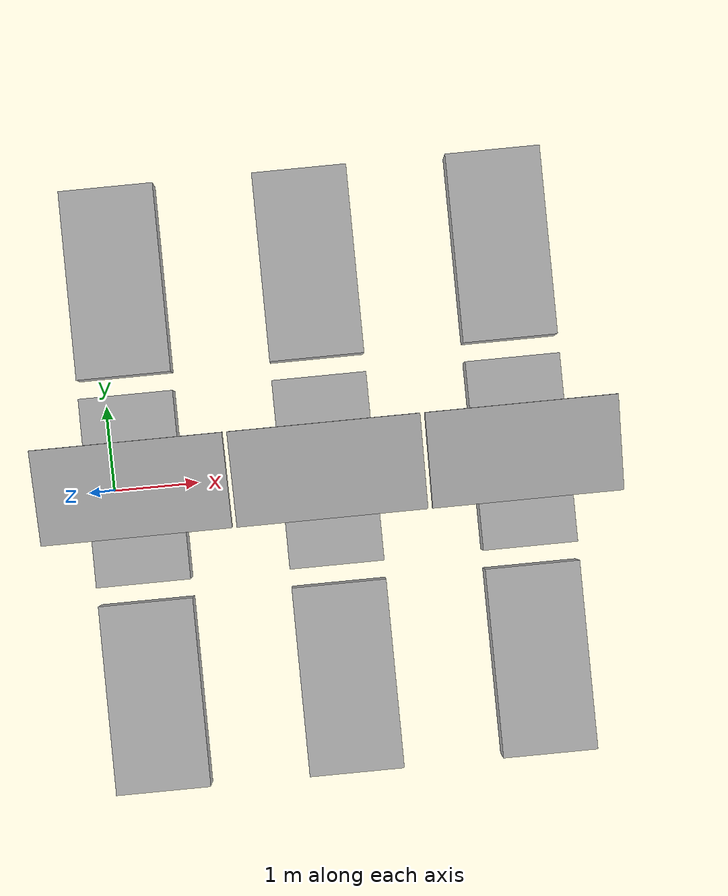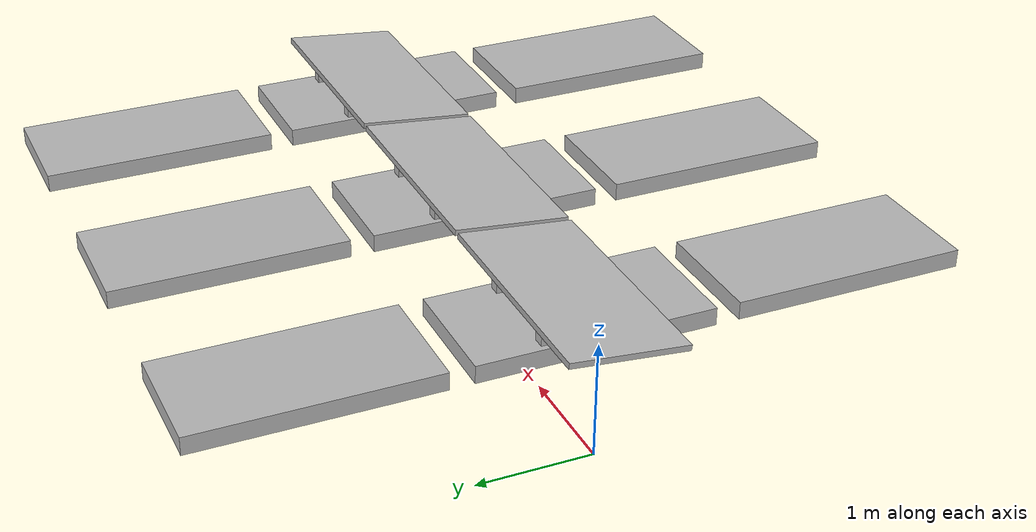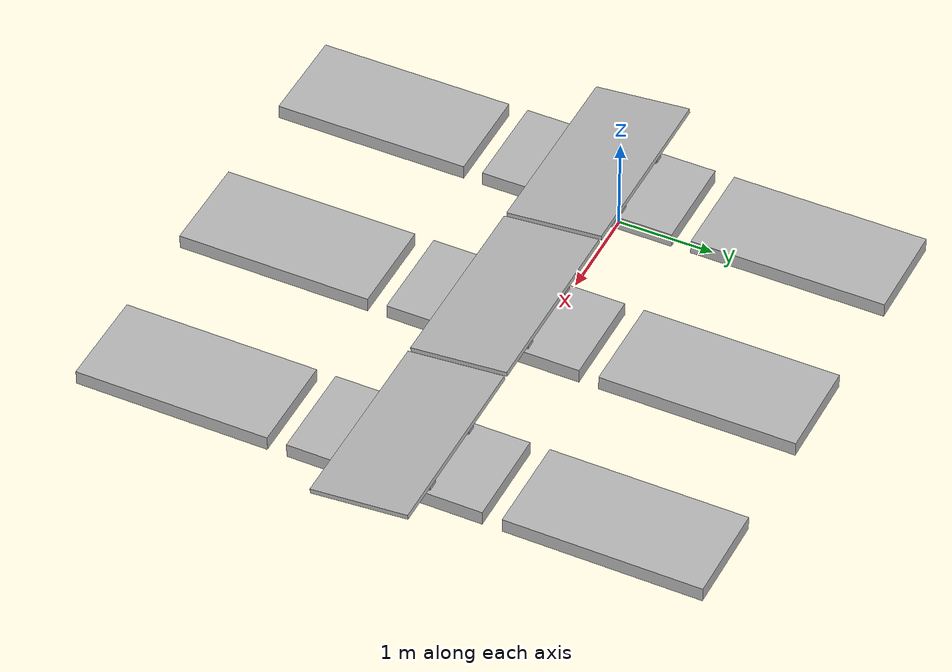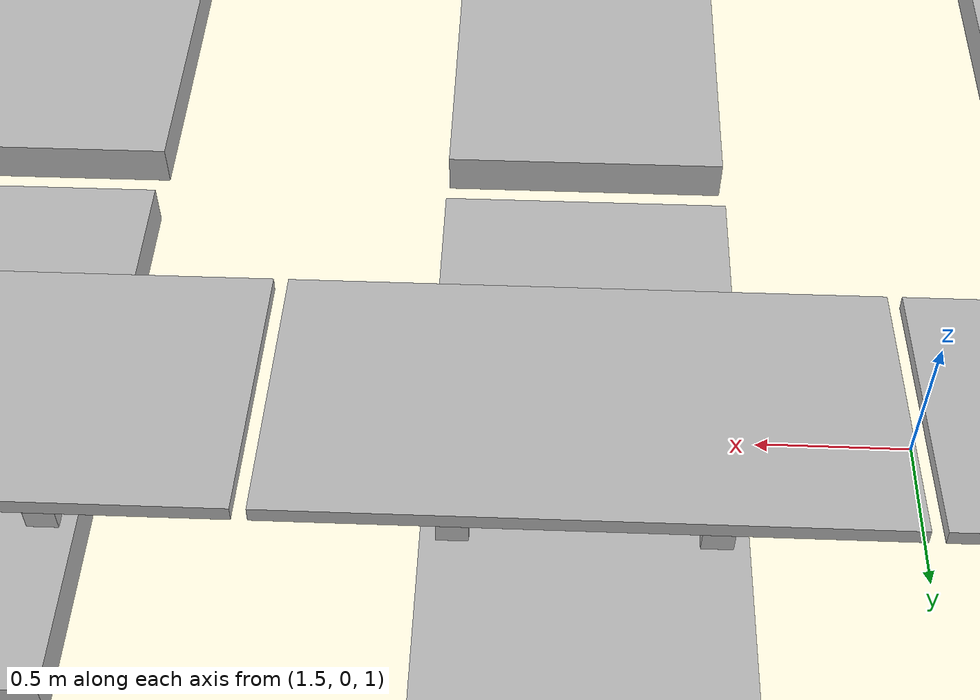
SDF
<?xml version="1.0" ?>
<sdf version="1.4">
  <world name="underwater">
    <include>
      <uri>model://sun</uri>
    </include>

    <include>
      <uri>model://Sphere</uri>
      <pose>0.5 0 1 0 0 0</pose>
    </include>

    <include>
      <uri>model://Sphere1</uri>
      <pose>2.55 0 1 0 0 0</pose>
    </include>

    <include>
      <uri>model://Sphere2</uri>
      <pose>4.6 0 1 0 0 0</pose>
    </include>

    <include>
      <uri>model://Sphere3</uri>
      <pose>0.5 2.2 1 0 0 0</pose>
    </include>

    <include>
      <uri>model://Sphere4</uri>
      <pose>2.55 2.2 1 0 0 0</pose>
    </include>

    <include>
      <uri>model://Sphere5</uri>
      <pose>4.6 2.2 1 0 0 0</pose>
    </include>

    <include>
      <uri>model://Sphere6</uri>
      <pose>0.5 -2.2 1 0 0 0</pose>
    </include>

    <include>
      <uri>model://Sphere7</uri>
      <pose>2.55 -2.2 1 0 0 0</pose>
    </include>

    <include>
      <uri>model://Sphere8</uri>
      <pose>4.6 -2.2 1 0 0 0</pose>
    </include>

  </world>
</sdf>

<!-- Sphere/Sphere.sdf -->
<sdf version='1.5'>
  <model name='floating_buoy'>
    <pose>0 0 0 0 0 0</pose>

    <link name='base_link'>
      <inertial>
        <pose>0 0 0 0 0 0</pose>
        <mass>10</mass>
        <inertia>
          <ixx>1</ixx>
          <ixy>0</ixy>
          <ixz>0</ixz>
          <iyy>1</iyy>
          <iyz>0</iyz>
          <izz>1</izz>
        </inertia>
      </inertial>

      <visual name='base_link_visual'>
        <pose>0 0 0 0 0 0</pose>
        <geometry>
          <box>
            <size>1 2 0.15</size>
          </box>
        </geometry>
      </visual>

      <collision name='base_link_collision'>
        <pose>0 0 0 0 0 0</pose>
        <geometry>
          <box>
            <size>1 2 0.15</size>
          </box>
        </geometry>
      </collision>
    </link>

        <!-- Small box 1 (rear left pole) -->
    <link name='small_box_1'>
      <pose>-0.4 -0.4 0.075 0 0 0</pose>
      <visual name='small_box_1_visual'>
        <geometry>
          <box>
            <size>0.1 0.1 0.15</size>
          </box>
        </geometry>
      </visual>
      <collision name='small_box_1_collision'>
        <geometry>
          <box>
            <size>0.1 0.1 0.15</size>
          </box>
        </geometry>
      </collision>
    </link>
    <joint name="small_box_1_joint" type="fixed">
      <parent>base_link</parent>
      <child>small_box_1</child>
    </joint>

    <!-- Small box 2 (front left pole, taller) -->
    <link name='small_box_2'>
      <pose>-0.4 0.4 0.15 0 0 0</pose> <!-- Adjusted Z position for height -->
      <visual name='small_box_2_visual'>
        <geometry>
          <box>
            <size>0.1 0.1 0.20</size>
          </box>
        </geometry>
      </visual>
      <collision name='small_box_2_collision'>
        <geometry>
          <box>
            <size>0.1 0.1 0.20</size>
          </box>
        </geometry>
      </collision>
    </link>
    <joint name="small_box_2_joint" type="fixed">
      <parent>base_link</parent>
      <child>small_box_2</child>
    </joint>

    <!-- Small box 3 (rear right pole) -->
    <link name='small_box_3'>
      <pose>0.4 -0.4 0.075 0 0 0</pose>
      <visual name='small_box_3_visual'>
        <geometry>
          <box>
            <size>0.1 0.1 0.15</size>
          </box>
        </geometry>
      </visual>
      <collision name='small_box_3_collision'>
        <geometry>
          <box>
            <size>0.1 0.1 0.15</size>
          </box>
        </geometry>
      </collision>
    </link>
    <joint name="small_box_3_joint" type="fixed">
      <parent>base_link</parent>
      <child>small_box_3</child>
    </joint>

    <!-- Small box 4 (front right pole, taller) -->
    <link name='small_box_4'>
      <pose>0.4 0.4 0.15 0 0 0</pose> <!-- Adjusted Z position for height -->
      <visual name='small_box_4_visual'>
        <geometry>
          <box>
            <size>0.1 0.1 0.20</size>
          </box>
        </geometry>
      </visual>
      <collision name='small_box_4_collision'>
        <geometry>
          <box>
            <size>0.1 0.1 0.20</size>
          </box>
        </geometry>
      </collision>
    </link>
    <joint name="small_box_4_joint" type="fixed">
      <parent>base_link</parent>
      <child>small_box_4</child>
    </joint>

<!-- Square -->

    <link name='top_square'>
      <pose>0 0 0.2 0.1 0 0</pose>
      <visual name='top_square_visual'>
        <geometry>
          <box>
            <size>2 1 0.05</size>
          </box>
        </geometry>
      </visual>
      <collision name='top_square_collision'>
        <geometry>
          <box>
            <size>1 1 0.1</size>
          </box>
        </geometry>
      </collision>
    </link>

    <!-- Fixed joints to attach the square platform to each pole -->
    <joint name="top_square_to_small_box_1" type="fixed">
      <parent>small_box_1</parent>
      <child>top_square</child>
    </joint>

    <joint name="top_square_to_small_box_2" type="fixed">
      <parent>small_box_2</parent>
      <child>top_square</child>
    </joint>

    <joint name="top_square_to_small_box_3" type="fixed">
      <parent>small_box_3</parent>
      <child>top_square</child>
    </joint>

    <joint name="top_square_to_small_box_4" type="fixed">
      <parent>small_box_4</parent>
      <child>top_square</child>
    </joint>

    <!-- buoyancy plugin -->
    <plugin name="freebuoyancy_gazebo" filename="libfreebuoyancy_gazebo.so">
      <descriptionParam>robot_description</descriptionParam>
      <fluidTopic>current</fluidTopic>
      <alwaysOn>true</alwaysOn>
      <surface>0 0 0</surface>
      <updateRate>.001</updateRate>

      <link name='base_link'>
        <buoyancy>
          <compensation>0.2</compensation>
          <origin xyz="0 0 0"/>
        </buoyancy>
      </link>

    </plugin>

  </model>
</sdf>

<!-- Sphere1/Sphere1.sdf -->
<sdf version='1.5'>
  <model name='floating_buoy2'>
    <pose>0 0 0 0 0 0</pose>

    <link name='base_link'>
      <inertial>
        <pose>0 0 0 0 0 0</pose>
        <mass>10</mass>
        <inertia>
          <ixx>1</ixx>
          <ixy>0</ixy>
          <ixz>0</ixz>
          <iyy>1</iyy>
          <iyz>0</iyz>
          <izz>1</izz>
        </inertia>
      </inertial>

      <visual name='base_link_visual'>
        <pose>0 0 0 0 0 0</pose>
        <geometry>
          <box>
            <size>1 2 0.15</size>
          </box>
        </geometry>
      </visual>

      <collision name='base_link_collision'>
        <pose>0 0 0 0 0 0</pose>
        <geometry>
          <box>
            <size>1 2 0.15</size>
          </box>
        </geometry>
      </collision>
    </link>

        <!-- Small box 1 (rear left pole) -->
    <link name='small_box_1'>
      <pose>-0.4 -0.4 0.075 0 0 0</pose>
      <visual name='small_box_1_visual'>
        <geometry>
          <box>
            <size>0.1 0.1 0.15</size>
          </box>
        </geometry>
      </visual>
      <collision name='small_box_1_collision'>
        <geometry>
          <box>
            <size>0.1 0.1 0.15</size>
          </box>
        </geometry>
      </collision>
    </link>
    <joint name="small_box_1_joint" type="fixed">
      <parent>base_link</parent>
      <child>small_box_1</child>
    </joint>

    <!-- Small box 2 (front left pole, taller) -->
    <link name='small_box_2'>
      <pose>-0.4 0.4 0.15 0 0 0</pose> <!-- Adjusted Z position for height -->
      <visual name='small_box_2_visual'>
        <geometry>
          <box>
            <size>0.1 0.1 0.20</size>
          </box>
        </geometry>
      </visual>
      <collision name='small_box_2_collision'>
        <geometry>
          <box>
            <size>0.1 0.1 0.20</size>
          </box>
        </geometry>
      </collision>
    </link>
    <joint name="small_box_2_joint" type="fixed">
      <parent>base_link</parent>
      <child>small_box_2</child>
    </joint>

    <!-- Small box 3 (rear right pole) -->
    <link name='small_box_3'>
      <pose>0.4 -0.4 0.075 0 0 0</pose>
      <visual name='small_box_3_visual'>
        <geometry>
          <box>
            <size>0.1 0.1 0.15</size>
          </box>
        </geometry>
      </visual>
      <collision name='small_box_3_collision'>
        <geometry>
          <box>
            <size>0.1 0.1 0.15</size>
          </box>
        </geometry>
      </collision>
    </link>
    <joint name="small_box_3_joint" type="fixed">
      <parent>base_link</parent>
      <child>small_box_3</child>
    </joint>

    <!-- Small box 4 (front right pole, taller) -->
    <link name='small_box_4'>
      <pose>0.4 0.4 0.15 0 0 0</pose> <!-- Adjusted Z position for height -->
      <visual name='small_box_4_visual'>
        <geometry>
          <box>
            <size>0.1 0.1 0.20</size>
          </box>
        </geometry>
      </visual>
      <collision name='small_box_4_collision'>
        <geometry>
          <box>
            <size>0.1 0.1 0.20</size>
          </box>
        </geometry>
      </collision>
    </link>
    <joint name="small_box_4_joint" type="fixed">
      <parent>base_link</parent>
      <child>small_box_4</child>
    </joint>

<!-- Square -->

    <link name='top_square'>
      <pose>0 0 0.2 0.1 0 0</pose>
      <visual name='top_square_visual'>
        <geometry>
          <box>
            <size>2 1 0.05</size>
          </box>
        </geometry>
      </visual>
      <collision name='top_square_collision'>
        <geometry>
          <box>
            <size>1 1 0.1</size>
          </box>
        </geometry>
      </collision>
    </link>

    <!-- Fixed joints to attach the square platform to each pole -->
    <joint name="top_square_to_small_box_1" type="fixed">
      <parent>small_box_1</parent>
      <child>top_square</child>
    </joint>

    <joint name="top_square_to_small_box_2" type="fixed">
      <parent>small_box_2</parent>
      <child>top_square</child>
    </joint>

    <joint name="top_square_to_small_box_3" type="fixed">
      <parent>small_box_3</parent>
      <child>top_square</child>
    </joint>

    <joint name="top_square_to_small_box_4" type="fixed">
      <parent>small_box_4</parent>
      <child>top_square</child>
    </joint>

    <!-- buoyancy plugin -->
    <plugin name="freebuoyancy_gazebo" filename="libfreebuoyancy_gazebo.so">
      <descriptionParam>robot_description</descriptionParam>
      <fluidTopic>current</fluidTopic>
      <alwaysOn>true</alwaysOn>
      <surface>0 0 0</surface>
      <updateRate>.001</updateRate>

      <link name='base_link'>
        <buoyancy>
          <compensation>0.2</compensation>
          <origin xyz="0 0 0"/>
        </buoyancy>
      </link>

    </plugin>

  </model>
</sdf>

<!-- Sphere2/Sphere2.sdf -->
<sdf version='1.5'>
  <model name='floating_buoy3'>
    <pose>0 0 0 0 0 0</pose>

    <link name='base_link'>
      <inertial>
        <pose>0 0 0 0 0 0</pose>
        <mass>10</mass>
        <inertia>
          <ixx>1</ixx>
          <ixy>0</ixy>
          <ixz>0</ixz>
          <iyy>1</iyy>
          <iyz>0</iyz>
          <izz>1</izz>
        </inertia>
      </inertial>

      <visual name='base_link_visual'>
        <pose>0 0 0 0 0 0</pose>
        <geometry>
          <box>
            <size>1 2 0.15</size>
          </box>
        </geometry>
      </visual>

      <collision name='base_link_collision'>
        <pose>0 0 0 0 0 0</pose>
        <geometry>
          <box>
            <size>1 2 0.15</size>
          </box>
        </geometry>
      </collision>

    </link>
    <!-- Small box 1 (rear left pole) -->
    <link name='small_box_1'>
      <pose>-0.4 -0.4 0.075 0 0 0</pose>
      <visual name='small_box_1_visual'>
        <geometry>
          <box>
            <size>0.1 0.1 0.15</size>
          </box>
        </geometry>
      </visual>
      <collision name='small_box_1_collision'>
        <geometry>
          <box>
            <size>0.1 0.1 0.15</size>
          </box>
        </geometry>
      </collision>
    </link>
    <joint name="small_box_1_joint" type="fixed">
      <parent>base_link</parent>
      <child>small_box_1</child>
    </joint>

    <!-- Small box 2 (front left pole, taller) -->
    <link name='small_box_2'>
      <pose>-0.4 0.4 0.15 0 0 0</pose> <!-- Adjusted Z position for height -->
      <visual name='small_box_2_visual'>
        <geometry>
          <box>
            <size>0.1 0.1 0.20</size>
          </box>
        </geometry>
      </visual>
      <collision name='small_box_2_collision'>
        <geometry>
          <box>
            <size>0.1 0.1 0.20</size>
          </box>
        </geometry>
      </collision>
    </link>
    <joint name="small_box_2_joint" type="fixed">
      <parent>base_link</parent>
      <child>small_box_2</child>
    </joint>

    <!-- Small box 3 (rear right pole) -->
    <link name='small_box_3'>
      <pose>0.4 -0.4 0.075 0 0 0</pose>
      <visual name='small_box_3_visual'>
        <geometry>
          <box>
            <size>0.1 0.1 0.15</size>
          </box>
        </geometry>
      </visual>
      <collision name='small_box_3_collision'>
        <geometry>
          <box>
            <size>0.1 0.1 0.15</size>
          </box>
        </geometry>
      </collision>
    </link>
    <joint name="small_box_3_joint" type="fixed">
      <parent>base_link</parent>
      <child>small_box_3</child>
    </joint>

    <!-- Small box 4 (front right pole, taller) -->
    <link name='small_box_4'>
      <pose>0.4 0.4 0.15 0 0 0</pose> <!-- Adjusted Z position for height -->
      <visual name='small_box_4_visual'>
        <geometry>
          <box>
            <size>0.1 0.1 0.20</size>
          </box>
        </geometry>
      </visual>
      <collision name='small_box_4_collision'>
        <geometry>
          <box>
            <size>0.1 0.1 0.20</size>
          </box>
        </geometry>
      </collision>
    </link>
    <joint name="small_box_4_joint" type="fixed">
      <parent>base_link</parent>
      <child>small_box_4</child>
    </joint>

<!-- Square -->

    <link name='top_square'>
      <pose>0 0 0.2 0.1 0 0</pose>
      <visual name='top_square_visual'>
        <geometry>
          <box>
            <size>2 1 0.05</size>
          </box>
        </geometry>
      </visual>
      <collision name='top_square_collision'>
        <geometry>
          <box>
            <size>1 1 0.1</size>
          </box>
        </geometry>
      </collision>
    </link>

    <!-- Fixed joints to attach the square platform to each pole -->
    <joint name="top_square_to_small_box_1" type="fixed">
      <parent>small_box_1</parent>
      <child>top_square</child>
    </joint>

    <joint name="top_square_to_small_box_2" type="fixed">
      <parent>small_box_2</parent>
      <child>top_square</child>
    </joint>

    <joint name="top_square_to_small_box_3" type="fixed">
      <parent>small_box_3</parent>
      <child>top_square</child>
    </joint>

    <joint name="top_square_to_small_box_4" type="fixed">
      <parent>small_box_4</parent>
      <child>top_square</child>
    </joint>

    <!-- buoyancy plugin -->
    <plugin name="freebuoyancy_gazebo" filename="libfreebuoyancy_gazebo.so">
      <descriptionParam>robot_description</descriptionParam>
      <fluidTopic>current</fluidTopic>
      <alwaysOn>true</alwaysOn>
      <surface>0 0 0</surface>
      <updateRate>.001</updateRate>

      <link name='base_link'>
        <buoyancy>
          <compensation>0.2</compensation>
          <origin xyz= "0 0 0"/>
        </buoyancy>
      </link>

    </plugin>

  </model>

</sdf>

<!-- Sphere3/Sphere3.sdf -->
<sdf version='1.5'>
  <model name='floating_buoy4'>
    <pose>0 0 0 0 0 0</pose>

    <link name='base_link'>
      <inertial>
        <pose>0 0 0 0 0 0</pose>
        <mass>10</mass>
        <inertia>
          <ixx>1</ixx>
          <ixy>0</ixy>
          <ixz>0</ixz>
          <iyy>1</iyy>
          <iyz>0</iyz>
          <izz>1</izz>
        </inertia>
      </inertial>

      <visual name='base_link_visual'>
        <pose>0 0 0 0 0 0</pose>
        <geometry>
          <box>
            <size>1 2 0.15</size>
          </box>
        </geometry>
      </visual>

      <collision name='base_link_collision'>
        <pose>0 0 0 0 0 0</pose>
        <geometry>
          <box>
            <size>1 2 0.15</size>
          </box>
        </geometry>
      </collision>

    </link>

    <!-- buoyancy plugin -->
    <plugin name="freebuoyancy_gazebo" filename="libfreebuoyancy_gazebo.so">
      <descriptionParam>robot_description</descriptionParam>
      <fluidTopic>current</fluidTopic>
      <alwaysOn>true</alwaysOn>
      <surface>0 0 0</surface>
      <updateRate>.001</updateRate>

      <link name='base_link'>
        <buoyancy>
          <compensation>0.15</compensation>
          <origin xyz= "0 0 0"/>
        </buoyancy>
      </link>

    </plugin>

  </model>

</sdf>

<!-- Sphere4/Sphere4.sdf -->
<sdf version='1.5'>
  <model name='floating_buoy5'>
    <pose>0 0 0 0 0 0</pose>

    <link name='base_link'>
      <inertial>
        <pose>0 0 0 0 0 0</pose>
        <mass>10</mass>
        <inertia>
          <ixx>1</ixx>
          <ixy>0</ixy>
          <ixz>0</ixz>
          <iyy>1</iyy>
          <iyz>0</iyz>
          <izz>1</izz>
        </inertia>
      </inertial>

      <visual name='base_link_visual'>
        <pose>0 0 0 0 0 0</pose>
        <geometry>
          <box>
            <size>1 2 0.15</size>
          </box>
        </geometry>
      </visual>

      <collision name='base_link_collision'>
        <pose>0 0 0 0 0 0</pose>
        <geometry>
          <box>
            <size>1 2 0.15</size>
          </box>
        </geometry>
      </collision>

    </link>

    <!-- buoyancy plugin -->
    <plugin name="freebuoyancy_gazebo" filename="libfreebuoyancy_gazebo.so">
      <descriptionParam>robot_description</descriptionParam>
      <fluidTopic>current</fluidTopic>
      <alwaysOn>true</alwaysOn>
      <surface>0 0 0</surface>
      <updateRate>.001</updateRate>

      <link name='base_link'>
        <buoyancy>
          <compensation>0.15</compensation>
          <origin xyz= "0 0 0"/>
        </buoyancy>
      </link>

    </plugin>

  </model>

</sdf>

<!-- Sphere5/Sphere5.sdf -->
<sdf version='1.5'>
  <model name='floating_buoy6'>
    <pose>0 0 0 0 0 0</pose>

    <link name='base_link'>
      <inertial>
        <pose>0 0 0 0 0 0</pose>
        <mass>10</mass>
        <inertia>
          <ixx>1</ixx>
          <ixy>0</ixy>
          <ixz>0</ixz>
          <iyy>1</iyy>
          <iyz>0</iyz>
          <izz>1</izz>
        </inertia>
      </inertial>

      <visual name='base_link_visual'>
        <pose>0 0 0 0 0 0</pose>
        <geometry>
          <box>
            <size>1 2 0.15</size>
          </box>
        </geometry>
      </visual>

      <collision name='base_link_collision'>
        <pose>0 0 0 0 0 0</pose>
        <geometry>
          <box>
            <size>1 2 0.15</size>
          </box>
        </geometry>
      </collision>

    </link>

    <!-- buoyancy plugin -->
    <plugin name="freebuoyancy_gazebo" filename="libfreebuoyancy_gazebo.so">
      <descriptionParam>robot_description</descriptionParam>
      <fluidTopic>current</fluidTopic>
      <alwaysOn>true</alwaysOn>
      <surface>0 0 0</surface>
      <updateRate>.001</updateRate>

      <link name='base_link'>
        <buoyancy>
          <compensation>0.15</compensation>
          <origin xyz= "0 0 0"/>
        </buoyancy>
      </link>

    </plugin>

  </model>

</sdf>

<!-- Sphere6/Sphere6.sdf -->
<sdf version='1.5'>
  <model name='floating_buoy7'>
    <pose>0 0 0 0 0 0</pose>

    <link name='base_link'>
      <inertial>
        <pose>0 0 0 0 0 0</pose>
        <mass>10</mass>
        <inertia>
          <ixx>1</ixx>
          <ixy>0</ixy>
          <ixz>0</ixz>
          <iyy>1</iyy>
          <iyz>0</iyz>
          <izz>1</izz>
        </inertia>
      </inertial>

      <visual name='base_link_visual'>
        <pose>0 0 0 0 0 0</pose>
        <geometry>
          <box>
            <size>1 2 0.15</size>
          </box>
        </geometry>
      </visual>

      <collision name='base_link_collision'>
        <pose>0 0 0 0 0 0</pose>
        <geometry>
          <box>
            <size>1 2 0.15</size>
          </box>
        </geometry>
      </collision>

    </link>

    <!-- buoyancy plugin -->
    <plugin name="freebuoyancy_gazebo" filename="libfreebuoyancy_gazebo.so">
      <descriptionParam>robot_description</descriptionParam>
      <fluidTopic>current</fluidTopic>
      <alwaysOn>true</alwaysOn>
      <surface>0 0 0</surface>
      <updateRate>.001</updateRate>

      <link name='base_link'>
        <buoyancy>
          <compensation>0.15</compensation>
          <origin xyz= "0 0 0"/>
        </buoyancy>
      </link>

    </plugin>

  </model>

</sdf>

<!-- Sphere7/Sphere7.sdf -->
<sdf version='1.5'>
  <model name='floating_buoy8'>
    <pose>0 0 0 0 0 0</pose>

    <link name='base_link'>
      <inertial>
        <pose>0 0 0 0 0 0</pose>
        <mass>10</mass>
        <inertia>
          <ixx>1</ixx>
          <ixy>0</ixy>
          <ixz>0</ixz>
          <iyy>1</iyy>
          <iyz>0</iyz>
          <izz>1</izz>
        </inertia>
      </inertial>

      <visual name='base_link_visual'>
        <pose>0 0 0 0 0 0</pose>
        <geometry>
          <box>
            <size>1 2 0.15</size>
          </box>
        </geometry>
      </visual>

      <collision name='base_link_collision'>
        <pose>0 0 0 0 0 0</pose>
        <geometry>
          <box>
            <size>1 2 0.15</size>
          </box>
        </geometry>
      </collision>

    </link>

    <!-- buoyancy plugin -->
    <plugin name="freebuoyancy_gazebo" filename="libfreebuoyancy_gazebo.so">
      <descriptionParam>robot_description</descriptionParam>
      <fluidTopic>current</fluidTopic>
      <alwaysOn>true</alwaysOn>
      <surface>0 0 0</surface>
      <updateRate>.001</updateRate>

      <link name='base_link'>
        <buoyancy>
          <compensation>0.15</compensation>
          <origin xyz= "0 0 0"/>
        </buoyancy>
      </link>

    </plugin>

  </model>

</sdf>

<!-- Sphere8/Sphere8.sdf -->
<sdf version='1.5'>
  <model name='floating_buoy9'>
    <pose>0 0 0 0 0 0</pose>

    <link name='base_link'>
      <inertial>
        <pose>0 0 0 0 0 0</pose>
        <mass>10</mass>
        <inertia>
          <ixx>1</ixx>
          <ixy>0</ixy>
          <ixz>0</ixz>
          <iyy>1</iyy>
          <iyz>0</iyz>
          <izz>1</izz>
        </inertia>
      </inertial>

      <visual name='base_link_visual'>
        <pose>0 0 0 0 0 0</pose>
        <geometry>
          <box>
            <size>1 2 0.15</size>
          </box>
        </geometry>
      </visual>

      <collision name='base_link_collision'>
        <pose>0 0 0 0 0 0</pose>
        <geometry>
          <box>
            <size>1 2 0.15</size>
          </box>
        </geometry>
      </collision>

    </link>

    <!-- buoyancy plugin -->
    <plugin name="freebuoyancy_gazebo" filename="libfreebuoyancy_gazebo.so">
      <descriptionParam>robot_description</descriptionParam>
      <fluidTopic>current</fluidTopic>
      <alwaysOn>true</alwaysOn>
      <surface>0 0 0</surface>
      <updateRate>.001</updateRate>

      <link name='base_link'>
        <buoyancy>
          <compensation>0.15</compensation>
          <origin xyz= "0 0 0"/>
        </buoyancy>
      </link>

    </plugin>

  </model>

</sdf>
